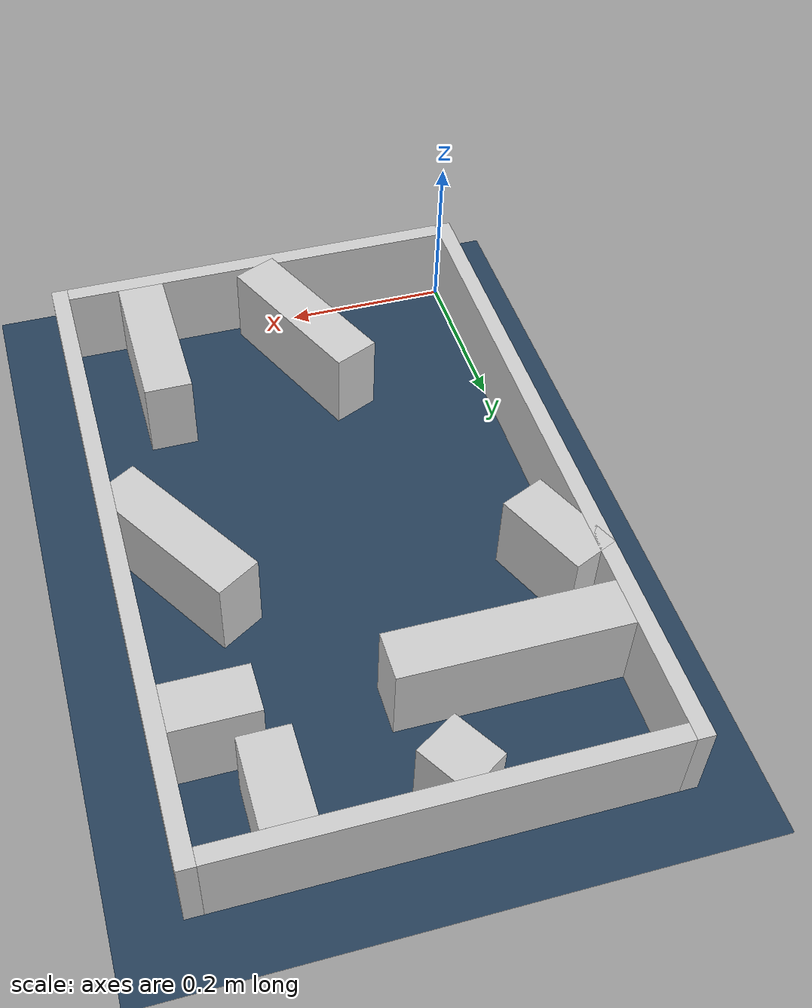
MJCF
<?xml version="1.0" ?>
<mujoco model="generated_real_template">
  <compiler angle="degree"/>
  <option timestep="0.002" integrator="implicitfast" iterations="100" cone="elliptic"/>
  <default>
    <geom density="1"/>
  </default>
  <asset>
    <texture builtin="gradient" height="3072" rgb1="0.3 0.5 0.7" rgb2="0 0 0" type="skybox" width="512"/>
    <texture builtin="checker" height="300" mark="edge" markrgb="0.8 0.8 0.8" name="groundplane" rgb1="0.2 0.3 0.4" rgb2="0.1 0.2 0.3" type="2d" width="300"/>
    <material name="groundplane" reflectance="0.2" texrepeat="5 5" texture="groundplane" texuniform="true"/>
  </asset>
  <worldbody>
    <light dir="0 0 -1" directional="true" pos="0 0 1.5"/>
    <geom name="floor" type="plane" condim="4" friction="0.5 0.005 0.001" material="groundplane" size="0 0 0.05"/>
    <body name="walls">
      <geom name="wall_boundary_left" type="box" condim="4" friction="1.0 0.005 0.0001" rgba="0.8 0.8 0.8 1" pos="-0.010000 0.387500 0.050000" euler="0 0 0.000000" size="0.010000 0.407500 0.050000"/>
      <geom name="wall_boundary_right" type="box" condim="4" friction="1.0 0.005 0.0001" rgba="0.8 0.8 0.8 1" pos="0.500000 0.387500 0.050000" euler="0 0 0.000000" size="0.010000 0.407500 0.050000"/>
      <geom name="wall_boundary_bottom" type="box" condim="4" friction="1.0 0.005 0.0001" rgba="0.8 0.8 0.8 1" pos="0.245000 -0.010000 0.050000" euler="0 0 0.000000" size="0.245000 0.010000 0.050000"/>
      <geom name="wall_boundary_top" type="box" condim="4" friction="1.0 0.005 0.0001" rgba="0.8 0.8 0.8 1" pos="0.245000 0.785000 0.050000" euler="0 0 0.000000" size="0.245000 0.010000 0.050000"/>
      <geom name="wall_inner_1_1" type="box" condim="4" friction="1.0 0.005 0.0001" rgba="0.8 0.8 0.8 1" pos="0.433440 0.400635 0.050000" euler="0 0 121.296279" size="0.100499 0.028500 0.050000"/>
      <geom name="wall_inner_1_2" type="box" condim="4" friction="1.0 0.005 0.0001" rgba="0.8 0.8 0.8 1" pos="0.222854 0.747039 0.050000" euler="0 0 121.296279" size="0.032722 0.028500 0.050000"/>
      <geom name="wall_inner_2_1" type="box" condim="4" friction="1.0 0.005 0.0001" rgba="0.8 0.8 0.8 1" pos="0.399372 0.094195 0.050000" euler="0 0 90.000000" size="0.094195 0.028500 0.050000"/>
      <geom name="wall_inner_2_2" type="box" condim="4" friction="1.0 0.005 0.0001" rgba="0.8 0.8 0.8 1" pos="0.399372 0.724216 0.050000" euler="0 0 90.000000" size="0.050784 0.028500 0.050000"/>
      <geom name="wall_inner_3_1" type="box" condim="4" friction="1.0 0.005 0.0001" rgba="0.8 0.8 0.8 1" pos="0.029091 0.504791 0.050000" euler="0 0 -66.305017" size="0.057215 0.028500 0.050000"/>
      <geom name="wall_inner_3_2" type="box" condim="4" friction="1.0 0.005 0.0001" rgba="0.8 0.8 0.8 1" pos="0.208988 0.094877 0.050000" euler="0 0 -66.305017" size="0.103611 0.028500 0.050000"/>
      <geom name="wall_inner_4_1" type="box" condim="4" friction="1.0 0.005 0.0001" rgba="0.8 0.8 0.8 1" pos="0.129621 0.623217 0.050000" euler="0 0 0.000000" size="0.129621 0.028500 0.050000"/>
      <geom name="wall_inner_4_2" type="box" condim="4" friction="1.0 0.005 0.0001" rgba="0.8 0.8 0.8 1" pos="0.441606 0.623217 0.050000" euler="0 0 0.000000" size="0.048394 0.028500 0.050000"/>
    </body>
  </worldbody>
</mujoco>
